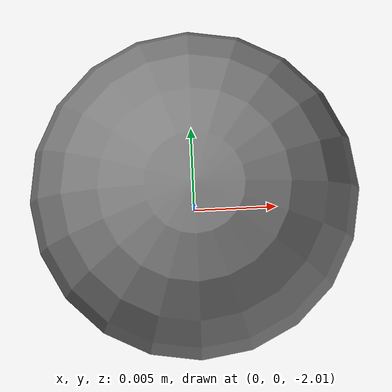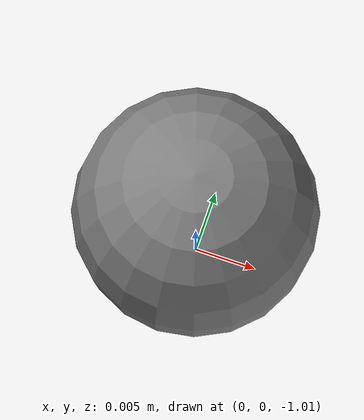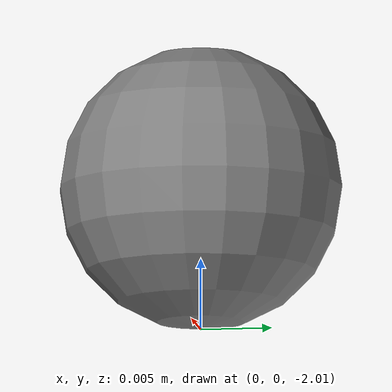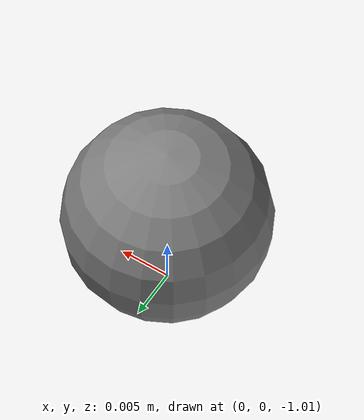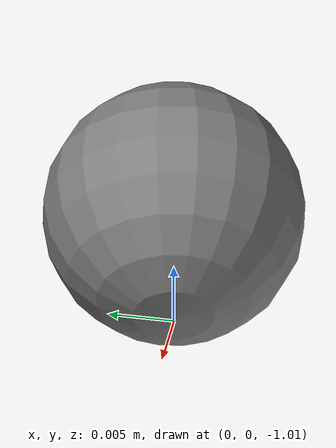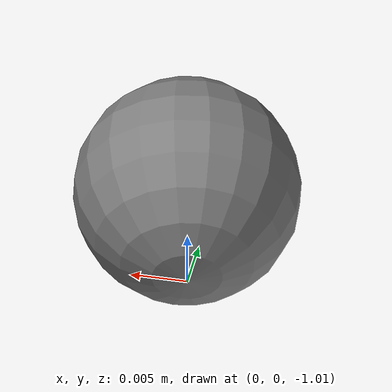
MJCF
<mujoco model="double_pendulum_rest">
            <option gravity="0 0 0" timestep="0.001"/>
            <worldbody>
                <body name="link1" pos="0 0 -1">
                    <joint type="hinge" axis="0 1 0"/>
                    <geom type="sphere" size="0.01" mass="1.0"/>
                    <body name="link2" pos="0 0 -1">
                        <joint type="hinge" axis="0 1 0"/>
                        <geom type="sphere" size="0.01" mass="1.0"/>
                    </body>
                </body>
            </worldbody>
        </mujoco>
